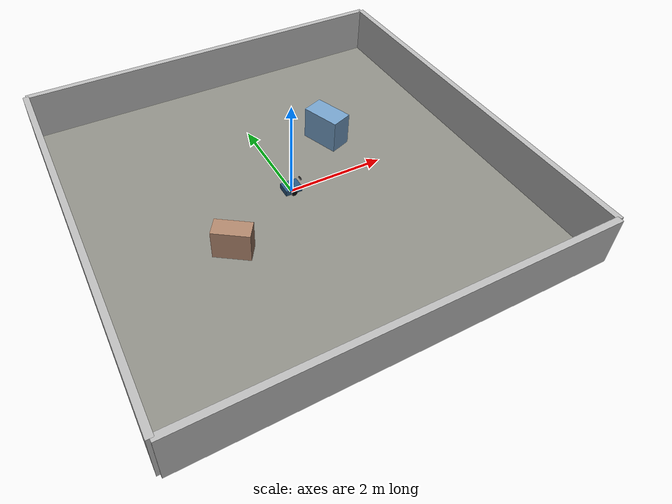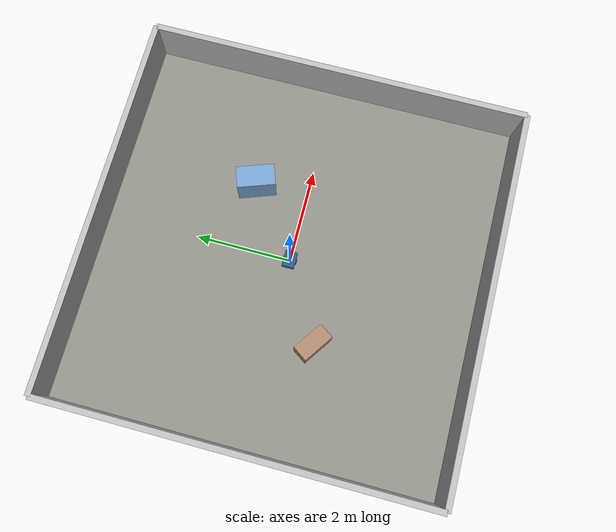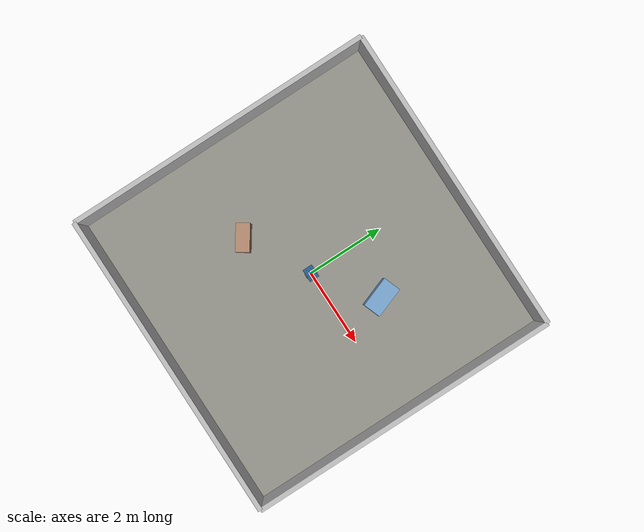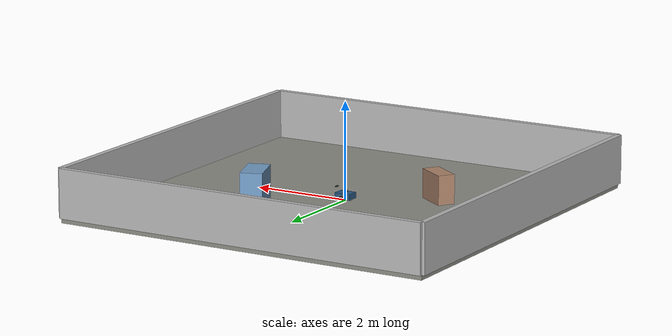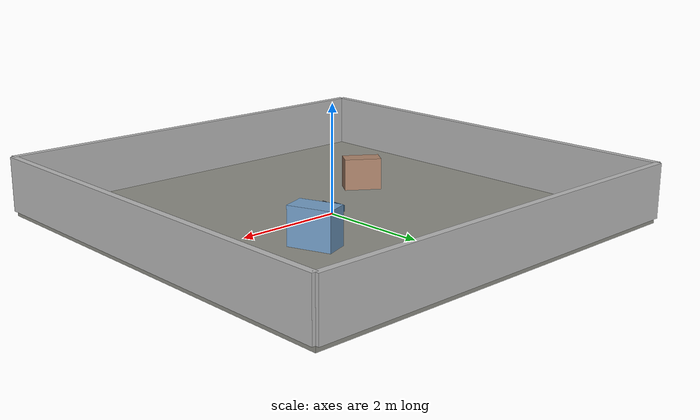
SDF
<?xml version="1.0"?>
<sdf version="1.7">
  <world name="slam_v2_indoor">
    <physics name="5ms" type="ignored">
      <max_step_size>0.005</max_step_size>
      <real_time_factor>1.0</real_time_factor>
    </physics>

    <plugin filename="gz-sim-physics-system" name="gz::sim::systems::Physics"/>
    <plugin filename="gz-sim-user-commands-system" name="gz::sim::systems::UserCommands"/>
    <plugin filename="gz-sim-scene-broadcaster-system" name="gz::sim::systems::SceneBroadcaster"/>
    <plugin filename="gz-sim-sensors-system" name="gz::sim::systems::Sensors">
      <render_engine>ogre2</render_engine>
    </plugin>
    <plugin filename="gz-sim-imu-system" name="gz::sim::systems::Imu"/>

    <light name="ceiling_light" type="point">
      <pose>0 0 4 0 0 0</pose>
      <diffuse>0.9 0.9 0.85 1</diffuse>
      <specular>0.2 0.2 0.2 1</specular>
      <attenuation>
        <range>12</range>
        <constant>0.6</constant>
        <linear>0.02</linear>
        <quadratic>0.001</quadratic>
      </attenuation>
    </light>

    <model name="floor">
      <static>true</static>
      <pose>0 0 -0.05 0 0 0</pose>
      <link name="link">
        <collision name="collision">
          <geometry><box><size>8 8 0.1</size></box></geometry>
        </collision>
        <visual name="visual">
          <geometry><box><size>8 8 0.1</size></box></geometry>
          <material><ambient>0.45 0.45 0.42 1</ambient><diffuse>0.55 0.55 0.52 1</diffuse></material>
        </visual>
      </link>
    </model>

    <model name="north_wall">
      <static>true</static>
      <pose>0 4 0.5 0 0 0</pose>
      <link name="link">
        <collision name="collision"><geometry><box><size>8 0.12 1.0</size></box></geometry></collision>
        <visual name="visual"><geometry><box><size>8 0.12 1.0</size></box></geometry></visual>
      </link>
    </model>
    <model name="south_wall">
      <static>true</static>
      <pose>0 -4 0.5 0 0 0</pose>
      <link name="link">
        <collision name="collision"><geometry><box><size>8 0.12 1.0</size></box></geometry></collision>
        <visual name="visual"><geometry><box><size>8 0.12 1.0</size></box></geometry></visual>
      </link>
    </model>
    <model name="east_wall">
      <static>true</static>
      <pose>4 0 0.5 0 0 0</pose>
      <link name="link">
        <collision name="collision"><geometry><box><size>0.12 8 1.0</size></box></geometry></collision>
        <visual name="visual"><geometry><box><size>0.12 8 1.0</size></box></geometry></visual>
      </link>
    </model>
    <model name="west_wall">
      <static>true</static>
      <pose>-4 0 0.5 0 0 0</pose>
      <link name="link">
        <collision name="collision"><geometry><box><size>0.12 8 1.0</size></box></geometry></collision>
        <visual name="visual"><geometry><box><size>0.12 8 1.0</size></box></geometry></visual>
      </link>
    </model>

    <model name="feature_box_a">
      <static>true</static>
      <pose>1.4 1.1 0.35 0 0 0.35</pose>
      <link name="link">
        <collision name="collision"><geometry><box><size>0.45 0.8 0.7</size></box></geometry></collision>
        <visual name="visual">
          <geometry><box><size>0.45 0.8 0.7</size></box></geometry>
          <material><ambient>0.35 0.5 0.65 1</ambient><diffuse>0.45 0.62 0.78 1</diffuse></material>
        </visual>
      </link>
    </model>

    <model name="feature_box_b">
      <static>true</static>
      <pose>-1.6 -0.9 0.3 0 0 -0.6</pose>
      <link name="link">
        <collision name="collision"><geometry><box><size>0.7 0.35 0.6</size></box></geometry></collision>
        <visual name="visual">
          <geometry><box><size>0.7 0.35 0.6</size></box></geometry>
          <material><ambient>0.55 0.42 0.35 1</ambient><diffuse>0.68 0.52 0.42 1</diffuse></material>
        </visual>
      </link>
    </model>

    <model name="slam_bot">
      <pose>0 0 0.06 0 0 0</pose>

      <link name="base_link">
        <inertial>
          <mass>8.0</mass>
          <inertia><ixx>0.05</ixx><ixy>0</ixy><ixz>0</ixz><iyy>0.07</iyy><iyz>0</iyz><izz>0.08</izz></inertia>
        </inertial>
        <collision name="collision">
          <pose>0 0 0.04 0 0 0</pose>
          <geometry><box><size>0.34 0.26 0.12</size></box></geometry>
        </collision>
        <visual name="visual">
          <pose>0 0 0.04 0 0 0</pose>
          <geometry><box><size>0.34 0.26 0.12</size></box></geometry>
          <material><ambient>0.12 0.26 0.38 1</ambient><diffuse>0.16 0.34 0.50 1</diffuse></material>
        </visual>
      </link>

      <link name="left_wheel">
        <pose>0 0.13 0 1.57079632679 0 0</pose>
        <inertial>
          <mass>0.35</mass>
          <inertia><ixx>0.0007</ixx><ixy>0</ixy><ixz>0</ixz><iyy>0.0007</iyy><iyz>0</iyz><izz>0.0012</izz></inertia>
        </inertial>
        <collision name="collision"><geometry><cylinder><radius>0.06</radius><length>0.035</length></cylinder></geometry></collision>
        <visual name="visual">
          <geometry><cylinder><radius>0.06</radius><length>0.035</length></cylinder></geometry>
          <material><ambient>0.04 0.04 0.04 1</ambient><diffuse>0.04 0.04 0.04 1</diffuse></material>
        </visual>
      </link>

      <link name="right_wheel">
        <pose>0 -0.13 0 1.57079632679 0 0</pose>
        <inertial>
          <mass>0.35</mass>
          <inertia><ixx>0.0007</ixx><ixy>0</ixy><ixz>0</ixz><iyy>0.0007</iyy><iyz>0</iyz><izz>0.0012</izz></inertia>
        </inertial>
        <collision name="collision"><geometry><cylinder><radius>0.06</radius><length>0.035</length></cylinder></geometry></collision>
        <visual name="visual">
          <geometry><cylinder><radius>0.06</radius><length>0.035</length></cylinder></geometry>
          <material><ambient>0.04 0.04 0.04 1</ambient><diffuse>0.04 0.04 0.04 1</diffuse></material>
        </visual>
      </link>

      <link name="caster">
        <pose>-0.13 0 -0.025 0 0 0</pose>
        <inertial>
          <mass>0.1</mass>
          <inertia><ixx>0.0001</ixx><ixy>0</ixy><ixz>0</ixz><iyy>0.0001</iyy><iyz>0</iyz><izz>0.0001</izz></inertia>
        </inertial>
        <collision name="collision"><geometry><sphere><radius>0.025</radius></sphere></geometry></collision>
        <visual name="visual"><geometry><sphere><radius>0.025</radius></sphere></geometry></visual>
      </link>

      <link name="laser_frame">
        <pose>0 0 0.13 0 0 0</pose>
        <inertial>
          <mass>0.15</mass>
          <inertia><ixx>0.0002</ixx><ixy>0</ixy><ixz>0</ixz><iyy>0.0002</iyy><iyz>0</iyz><izz>0.0002</izz></inertia>
        </inertial>
        <collision name="collision"><geometry><cylinder><radius>0.045</radius><length>0.035</length></cylinder></geometry></collision>
        <visual name="visual">
          <geometry><cylinder><radius>0.045</radius><length>0.035</length></cylinder></geometry>
          <material><ambient>0.02 0.02 0.025 1</ambient><diffuse>0.02 0.02 0.025 1</diffuse></material>
        </visual>
        <sensor name="lidar" type="gpu_lidar">
          <topic>/scan</topic>
          <update_rate>10</update_rate>
          <ray>
            <scan>
              <horizontal>
                <samples>720</samples>
                <resolution>1</resolution>
                <min_angle>-3.14159265359</min_angle>
                <max_angle>3.14159265359</max_angle>
              </horizontal>
            </scan>
            <range>
              <min>0.10</min>
              <max>10.0</max>
              <resolution>0.01</resolution>
            </range>
            <noise>
              <type>gaussian</type>
              <mean>0.0</mean>
              <stddev>0.005</stddev>
            </noise>
          </ray>
          <visualize>true</visualize>
        </sensor>
      </link>

      <link name="camera_link">
        <pose>0.19 0 0.20 0 0 0</pose>
        <inertial>
          <mass>0.072</mass>
          <inertia><ixx>0.00006</ixx><ixy>0</ixy><ixz>0</ixz><iyy>0.00002</iyy><iyz>0</iyz><izz>0.00006</izz></inertia>
        </inertial>
        <visual name="visual">
          <geometry><box><size>0.025 0.09 0.025</size></box></geometry>
          <material><ambient>0.08 0.08 0.08 1</ambient><diffuse>0.12 0.12 0.12 1</diffuse></material>
        </visual>
      </link>

      <link name="camera_infra1_frame">
        <pose>0.19 0.025 0.20 0 0 0</pose>
        <inertial>
          <mass>0.001</mass>
          <inertia><ixx>1e-7</ixx><ixy>0</ixy><ixz>0</ixz><iyy>1e-7</iyy><iyz>0</iyz><izz>1e-7</izz></inertia>
        </inertial>
        <sensor name="d435i_infra1" type="camera">
          <always_on>true</always_on>
          <update_rate>30</update_rate>
          <topic>/d435i/infra1/image_rect_raw</topic>
          <camera>
            <camera_info_topic>/d435i/infra1/camera_info</camera_info_topic>
            <optical_frame_id>camera_infra1_optical_frame</optical_frame_id>
            <horizontal_fov>1.58825</horizontal_fov>
            <image>
              <width>424</width>
              <height>240</height>
              <format>L8</format>
            </image>
            <clip><near>0.10</near><far>20.0</far></clip>
          </camera>
        </sensor>
      </link>

      <link name="camera_infra2_frame">
        <pose>0.19 -0.025 0.20 0 0 0</pose>
        <inertial>
          <mass>0.001</mass>
          <inertia><ixx>1e-7</ixx><ixy>0</ixy><ixz>0</ixz><iyy>1e-7</iyy><iyz>0</iyz><izz>1e-7</izz></inertia>
        </inertial>
        <sensor name="d435i_infra2" type="camera">
          <always_on>true</always_on>
          <update_rate>30</update_rate>
          <topic>/d435i/infra2/image_rect_raw</topic>
          <camera>
            <camera_info_topic>/d435i/infra2/camera_info</camera_info_topic>
            <optical_frame_id>camera_infra2_optical_frame</optical_frame_id>
            <horizontal_fov>1.58825</horizontal_fov>
            <image>
              <width>424</width>
              <height>240</height>
              <format>L8</format>
            </image>
            <clip><near>0.10</near><far>20.0</far></clip>
          </camera>
        </sensor>
      </link>

      <link name="camera_imu_frame">
        <pose>0.19 0 0.20 0 0 0</pose>
        <inertial>
          <mass>0.001</mass>
          <inertia><ixx>1e-7</ixx><ixy>0</ixy><ixz>0</ixz><iyy>1e-7</iyy><iyz>0</iyz><izz>1e-7</izz></inertia>
        </inertial>
        <sensor name="d435i_imu" type="imu">
          <always_on>true</always_on>
          <update_rate>200</update_rate>
          <topic>/d435i/imu</topic>
        </sensor>
      </link>

      <joint name="left_wheel_joint" type="revolute">
        <parent>base_link</parent>
        <child>left_wheel</child>
        <axis>
          <xyz expressed_in="__model__">0 1 0</xyz>
          <limit><lower>-1e16</lower><upper>1e16</upper></limit>
        </axis>
      </joint>

      <joint name="right_wheel_joint" type="revolute">
        <parent>base_link</parent>
        <child>right_wheel</child>
        <axis>
          <xyz expressed_in="__model__">0 1 0</xyz>
          <limit><lower>-1e16</lower><upper>1e16</upper></limit>
        </axis>
      </joint>

      <joint name="caster_joint" type="fixed">
        <parent>base_link</parent>
        <child>caster</child>
      </joint>

      <joint name="laser_joint" type="fixed">
        <parent>base_link</parent>
        <child>laser_frame</child>
      </joint>

      <joint name="camera_joint" type="fixed">
        <parent>base_link</parent>
        <child>camera_link</child>
      </joint>

      <joint name="camera_infra1_joint" type="fixed">
        <parent>camera_link</parent>
        <child>camera_infra1_frame</child>
      </joint>

      <joint name="camera_infra2_joint" type="fixed">
        <parent>camera_link</parent>
        <child>camera_infra2_frame</child>
      </joint>

      <joint name="camera_imu_joint" type="fixed">
        <parent>camera_link</parent>
        <child>camera_imu_frame</child>
      </joint>

      <plugin filename="gz-sim-diff-drive-system" name="gz::sim::systems::DiffDrive">
        <left_joint>left_wheel_joint</left_joint>
        <right_joint>right_wheel_joint</right_joint>
        <wheel_separation>0.23</wheel_separation>
        <wheel_radius>0.06</wheel_radius>
        <odom_publish_frequency>20</odom_publish_frequency>
        <max_linear_acceleration>1.0</max_linear_acceleration>
        <min_linear_acceleration>-1.0</min_linear_acceleration>
        <max_angular_acceleration>2.0</max_angular_acceleration>
        <min_angular_acceleration>-2.0</min_angular_acceleration>
        <max_linear_velocity>0.5</max_linear_velocity>
        <min_linear_velocity>-0.5</min_linear_velocity>
        <max_angular_velocity>1.2</max_angular_velocity>
        <min_angular_velocity>-1.2</min_angular_velocity>
      </plugin>
    </model>
  </world>
</sdf>
